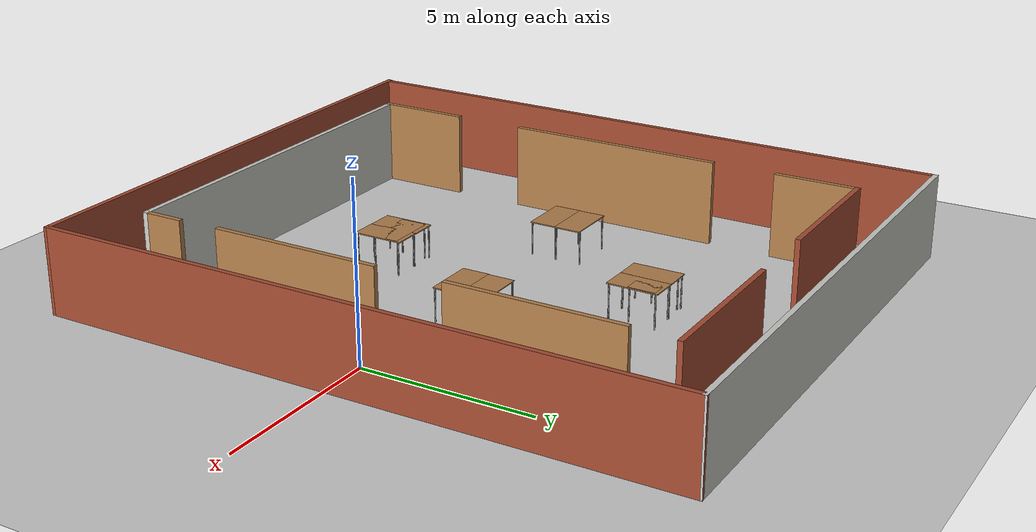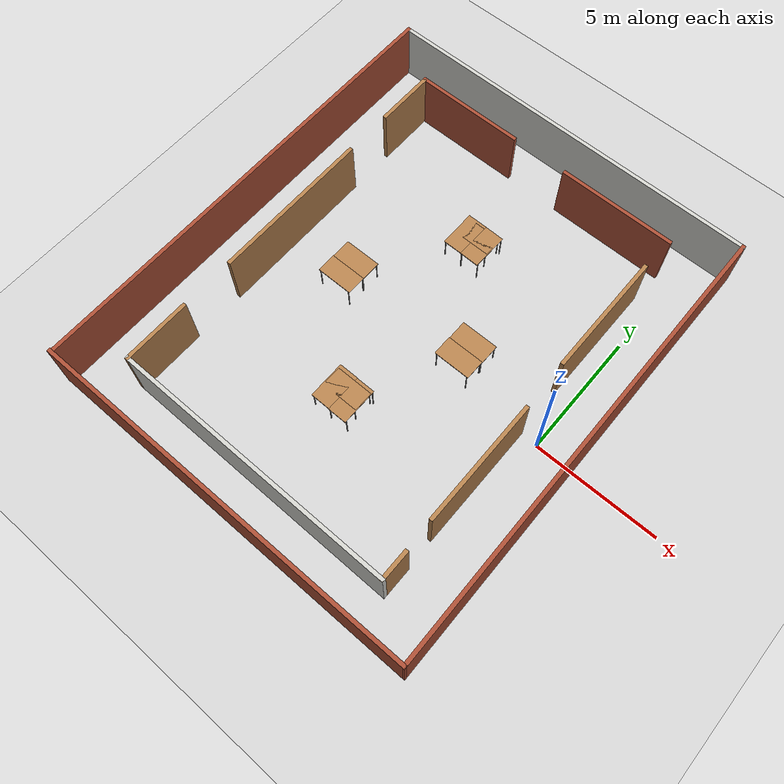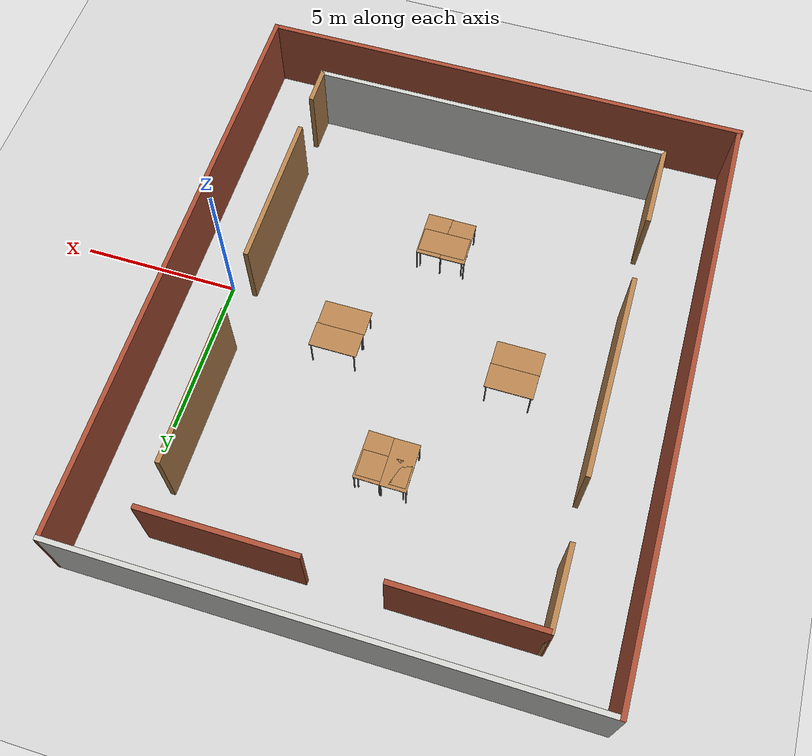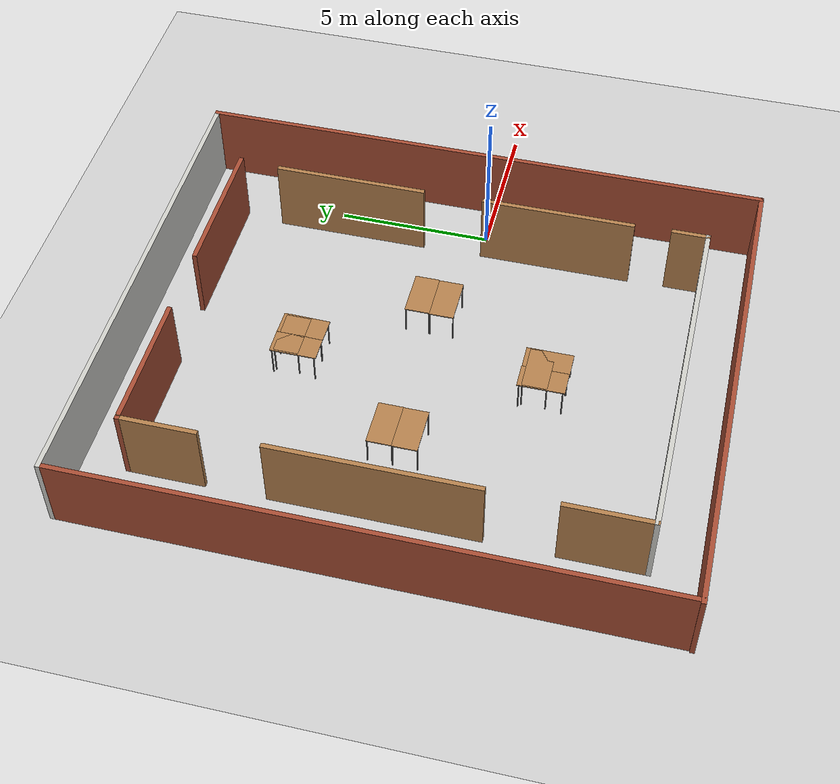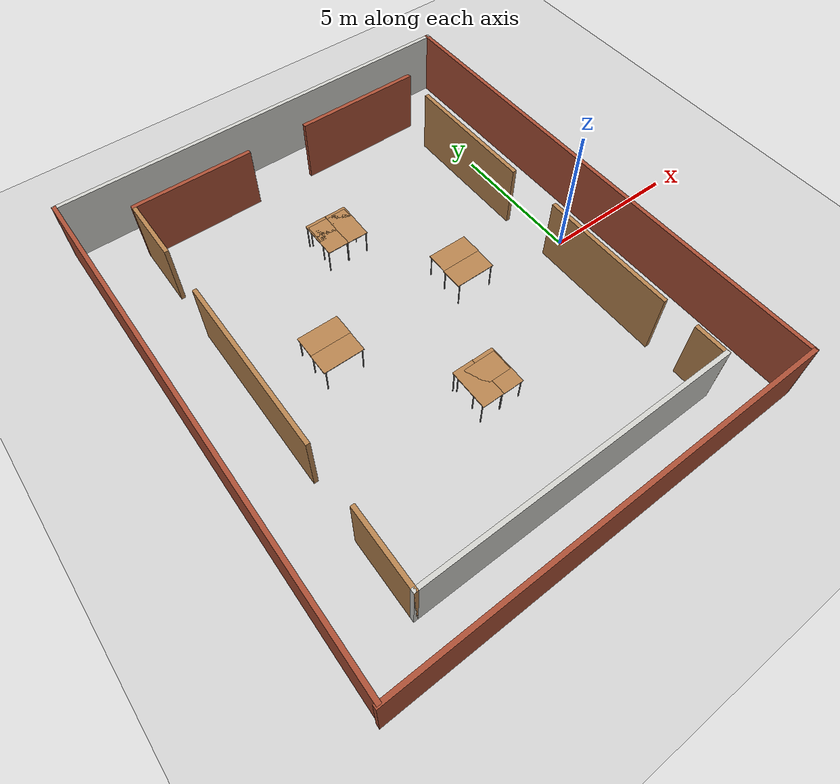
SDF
<sdf version="1.4">
 <world name="default">
  <model name="ground_plane">
   <static>1</static>
   <link name="link">
    <collision name="collision">
     <geometry><plane><normal>0 0 1</normal><size>100 100</size></plane></geometry>
     <surface><friction><ode><mu>100</mu><mu2>50</mu2></ode></friction></surface>
    </collision>
    <visual name="visual">
     <cast_shadows>0</cast_shadows>
     <geometry><plane><normal>0 0 1</normal><size>100 100</size></plane></geometry>
     <material>
      <script><uri>file://media/materials/scripts/gazebo.material</uri><name>Gazebo/Tertiary</name></script>
     </material>
    </visual>
   </link>
  </model>
  <light name="sun" type="directional">
   <pose>0 0 10 0 -0 0</pose>
   <diffuse>0.8 0.8 0.8 1</diffuse>
   <specular>0.2 0.2 0.2 1</specular>
   <attenuation>
    <range>1000</range>
    <constant>0.9</constant>
    <linear>0.01</linear>
    <quadratic>0.001</quadratic>
   </attenuation>
   <direction>-0.5 0.1 -0.9</direction>
  </light>
  <include><uri>model://open_hall3</uri><pose>-6.39 0.5 0.0 0 0 0</pose></include>
  <model name="table-01">
   <static>1</static>
   <link name="link">
    <collision name="surface">
     <pose>0 0 1 0 -0 0</pose>
     <geometry><box><size>1.5 0.8 0.03</size></box></geometry>
     <surface><friction><ode><mu>0.6</mu><mu2>0.6</mu2></ode></friction></surface>
    </collision>
    <visual name="visual1">
     <pose>0 0 1 0 -0 0</pose>
     <geometry><box><size>1.5 0.8 0.03</size></box></geometry>
     <material>
      <script><uri>file://media/materials/scripts/gazebo.material</uri><name>Gazebo/Wood</name></script>
     </material>
    </visual>
    <collision name="front_left_leg">
     <pose>0.68 0.38 0.5 0 -0 0</pose>
     <geometry><cylinder><radius>0.02</radius><length>1</length></cylinder></geometry>
    </collision>
    <visual name="front_left_leg">
     <pose>0.68 0.38 0.5 0 -0 0</pose>
     <geometry><cylinder><radius>0.02</radius><length>1</length></cylinder></geometry>
     <material>
      <script><uri>file://media/materials/scripts/gazebo.material</uri><name>Gazebo/Grey</name></script>
     </material>
    </visual>
    <collision name="front_right_leg">
     <pose>0.68 -0.38 0.5 0 -0 0</pose>
     <geometry><cylinder><radius>0.02</radius><length>1</length></cylinder></geometry>
    </collision>
    <visual name="front_right_leg">
     <pose>0.68 -0.38 0.5 0 -0 0</pose>
     <geometry><cylinder><radius>0.02</radius><length>1</length></cylinder></geometry>
     <material>
      <script><uri>file://media/materials/scripts/gazebo.material</uri><name>Gazebo/Grey</name></script>
     </material>
    </visual>
    <collision name="back_right_leg">
     <pose>-0.68 -0.38 0.5 0 -0 0</pose>
     <geometry><cylinder><radius>0.02</radius><length>1</length></cylinder></geometry>
    </collision>
    <visual name="back_right_leg">
     <pose>-0.68 -0.38 0.5 0 -0 0</pose>
     <geometry><cylinder><radius>0.02</radius><length>1</length></cylinder></geometry>
     <material>
      <script><uri>file://media/materials/scripts/gazebo.material</uri><name>Gazebo/Grey</name></script>
     </material>
    </visual>
    <collision name="back_left_leg">
     <pose>-0.68 0.38 0.5 0 -0 0</pose>
     <geometry><cylinder><radius>0.02</radius><length>1</length></cylinder></geometry>
    </collision>
    <visual name="back_left_leg">
     <pose>-0.68 0.38 0.5 0 -0 0</pose>
     <geometry><cylinder><radius>0.02</radius><length>1</length></cylinder></geometry>
     <material>
      <script><uri>file://media/materials/scripts/gazebo.material</uri><name>Gazebo/Grey</name></script>
     </material>
    </visual>
   </link>
   <pose>-5.75 -3.17 0 0 -0 -1.57</pose>
  </model>
  <model name="table-02">
   <static>1</static>
   <link name="link">
    <collision name="surface">
     <pose>0 0 1 0 -0 0</pose>
     <geometry><box><size>1.5 0.8 0.03</size></box></geometry>
     <surface><friction><ode><mu>0.6</mu><mu2>0.6</mu2></ode></friction></surface>
    </collision>
    <visual name="visual1">
     <pose>0 0 1 0 -0 0</pose>
     <geometry><box><size>1.5 0.8 0.03</size></box></geometry>
     <material>
      <script><uri>file://media/materials/scripts/gazebo.material</uri><name>Gazebo/Wood</name></script>
     </material>
    </visual>
    <collision name="front_left_leg">
     <pose>0.68 0.38 0.5 0 -0 0</pose>
     <geometry><cylinder><radius>0.02</radius><length>1</length></cylinder></geometry>
    </collision>
    <visual name="front_left_leg">
     <pose>0.68 0.38 0.5 0 -0 0</pose>
     <geometry><cylinder><radius>0.02</radius><length>1</length></cylinder></geometry>
     <material>
      <script><uri>file://media/materials/scripts/gazebo.material</uri><name>Gazebo/Grey</name></script>
     </material>
    </visual>
    <collision name="front_right_leg">
     <pose>0.68 -0.38 0.5 0 -0 0</pose>
     <geometry><cylinder><radius>0.02</radius><length>1</length></cylinder></geometry>
    </collision>
    <visual name="front_right_leg">
     <pose>0.68 -0.38 0.5 0 -0 0</pose>
     <geometry><cylinder><radius>0.02</radius><length>1</length></cylinder></geometry>
     <material>
      <script><uri>file://media/materials/scripts/gazebo.material</uri><name>Gazebo/Grey</name></script>
     </material>
    </visual>
    <collision name="back_right_leg">
     <pose>-0.68 -0.38 0.5 0 -0 0</pose>
     <geometry><cylinder><radius>0.02</radius><length>1</length></cylinder></geometry>
    </collision>
    <visual name="back_right_leg">
     <pose>-0.68 -0.38 0.5 0 -0 0</pose>
     <geometry><cylinder><radius>0.02</radius><length>1</length></cylinder></geometry>
     <material>
      <script><uri>file://media/materials/scripts/gazebo.material</uri><name>Gazebo/Grey</name></script>
     </material>
    </visual>
    <collision name="back_left_leg">
     <pose>-0.68 0.38 0.5 0 -0 0</pose>
     <geometry><cylinder><radius>0.02</radius><length>1</length></cylinder></geometry>
    </collision>
    <visual name="back_left_leg">
     <pose>-0.68 0.38 0.5 0 -0 0</pose>
     <geometry><cylinder><radius>0.02</radius><length>1</length></cylinder></geometry>
     <material>
      <script><uri>file://media/materials/scripts/gazebo.material</uri><name>Gazebo/Grey</name></script>
     </material>
    </visual>
   </link>
   <pose>-6.52 -3.16 0 0 -0 -1.57</pose>
  </model>
  <model name="table-03">
   <static>1</static>
   <link name="link">
    <collision name="surface">
     <pose>0 0 1 0 -0 0</pose>
     <geometry><box><size>1.5 0.8 0.03</size></box></geometry>
     <surface><friction><ode><mu>0.6</mu><mu2>0.6</mu2></ode></friction></surface>
    </collision>
    <visual name="visual1">
     <pose>0 0 1 0 -0 0</pose>
     <geometry><box><size>1.5 0.8 0.03</size></box></geometry>
     <material>
      <script><uri>file://media/materials/scripts/gazebo.material</uri><name>Gazebo/Wood</name></script>
     </material>
    </visual>
    <collision name="front_left_leg">
     <pose>0.68 0.38 0.5 0 -0 0</pose>
     <geometry><cylinder><radius>0.02</radius><length>1</length></cylinder></geometry>
    </collision>
    <visual name="front_left_leg">
     <pose>0.68 0.38 0.5 0 -0 0</pose>
     <geometry><cylinder><radius>0.02</radius><length>1</length></cylinder></geometry>
     <material>
      <script><uri>file://media/materials/scripts/gazebo.material</uri><name>Gazebo/Grey</name></script>
     </material>
    </visual>
    <collision name="front_right_leg">
     <pose>0.68 -0.38 0.5 0 -0 0</pose>
     <geometry><cylinder><radius>0.02</radius><length>1</length></cylinder></geometry>
    </collision>
    <visual name="front_right_leg">
     <pose>0.68 -0.38 0.5 0 -0 0</pose>
     <geometry><cylinder><radius>0.02</radius><length>1</length></cylinder></geometry>
     <material>
      <script><uri>file://media/materials/scripts/gazebo.material</uri><name>Gazebo/Grey</name></script>
     </material>
    </visual>
    <collision name="back_right_leg">
     <pose>-0.68 -0.38 0.5 0 -0 0</pose>
     <geometry><cylinder><radius>0.02</radius><length>1</length></cylinder></geometry>
    </collision>
    <visual name="back_right_leg">
     <pose>-0.68 -0.38 0.5 0 -0 0</pose>
     <geometry><cylinder><radius>0.02</radius><length>1</length></cylinder></geometry>
     <material>
      <script><uri>file://media/materials/scripts/gazebo.material</uri><name>Gazebo/Grey</name></script>
     </material>
    </visual>
    <collision name="back_left_leg">
     <pose>-0.68 0.38 0.5 0 -0 0</pose>
     <geometry><cylinder><radius>0.02</radius><length>1</length></cylinder></geometry>
    </collision>
    <visual name="back_left_leg">
     <pose>-0.68 0.38 0.5 0 -0 0</pose>
     <geometry><cylinder><radius>0.02</radius><length>1</length></cylinder></geometry>
     <material>
      <script><uri>file://media/materials/scripts/gazebo.material</uri><name>Gazebo/Grey</name></script>
     </material>
    </visual>
   </link>
   <pose>-9.34 0.31 0 0 -0 0</pose>
  </model>
  <model name="table-04">
   <static>1</static>
   <link name="link">
    <collision name="surface">
     <pose>0 0 1 0 -0 0</pose>
     <geometry><box><size>1.5 0.8 0.03</size></box></geometry>
     <surface><friction><ode><mu>0.6</mu><mu2>0.6</mu2></ode></friction></surface>
    </collision>
    <visual name="visual1">
     <pose>0 0 1 0 -0 0</pose>
     <geometry><box><size>1.5 0.8 0.03</size></box></geometry>
     <material>
      <script><uri>file://media/materials/scripts/gazebo.material</uri><name>Gazebo/Wood</name></script>
     </material>
    </visual>
    <collision name="front_left_leg">
     <pose>0.68 0.38 0.5 0 -0 0</pose>
     <geometry><cylinder><radius>0.02</radius><length>1</length></cylinder></geometry>
    </collision>
    <visual name="front_left_leg">
     <pose>0.68 0.38 0.5 0 -0 0</pose>
     <geometry><cylinder><radius>0.02</radius><length>1</length></cylinder></geometry>
     <material>
      <script><uri>file://media/materials/scripts/gazebo.material</uri><name>Gazebo/Grey</name></script>
     </material>
    </visual>
    <collision name="front_right_leg">
     <pose>0.68 -0.38 0.5 0 -0 0</pose>
     <geometry><cylinder><radius>0.02</radius><length>1</length></cylinder></geometry>
    </collision>
    <visual name="front_right_leg">
     <pose>0.68 -0.38 0.5 0 -0 0</pose>
     <geometry><cylinder><radius>0.02</radius><length>1</length></cylinder></geometry>
     <material>
      <script><uri>file://media/materials/scripts/gazebo.material</uri><name>Gazebo/Grey</name></script>
     </material>
    </visual>
    <collision name="back_right_leg">
     <pose>-0.68 -0.38 0.5 0 -0 0</pose>
     <geometry><cylinder><radius>0.02</radius><length>1</length></cylinder></geometry>
    </collision>
    <visual name="back_right_leg">
     <pose>-0.68 -0.38 0.5 0 -0 0</pose>
     <geometry><cylinder><radius>0.02</radius><length>1</length></cylinder></geometry>
     <material>
      <script><uri>file://media/materials/scripts/gazebo.material</uri><name>Gazebo/Grey</name></script>
     </material>
    </visual>
    <collision name="back_left_leg">
     <pose>-0.68 0.38 0.5 0 -0 0</pose>
     <geometry><cylinder><radius>0.02</radius><length>1</length></cylinder></geometry>
    </collision>
    <visual name="back_left_leg">
     <pose>-0.68 0.38 0.5 0 -0 0</pose>
     <geometry><cylinder><radius>0.02</radius><length>1</length></cylinder></geometry>
     <material>
      <script><uri>file://media/materials/scripts/gazebo.material</uri><name>Gazebo/Grey</name></script>
     </material>
    </visual>
   </link>
   <pose>-9.33 1.09 0 0 -0 0</pose>
  </model>
  <model name="table-05">
   <static>1</static>
   <link name="link">
    <collision name="surface">
     <pose>0 0 1 0 -0 0</pose>
     <geometry><box><size>1.5 0.8 0.03</size></box></geometry>
     <surface><friction><ode><mu>0.6</mu><mu2>0.6</mu2></ode></friction></surface>
    </collision>
    <visual name="visual1">
     <pose>0 0 1 0 -0 0</pose>
     <geometry><box><size>1.5 0.8 0.03</size></box></geometry>
     <material>
      <script><uri>file://media/materials/scripts/gazebo.material</uri><name>Gazebo/Wood</name></script>
     </material>
    </visual>
    <collision name="front_left_leg">
     <pose>0.68 0.38 0.5 0 -0 0</pose>
     <geometry><cylinder><radius>0.02</radius><length>1</length></cylinder></geometry>
    </collision>
    <visual name="front_left_leg">
     <pose>0.68 0.38 0.5 0 -0 0</pose>
     <geometry><cylinder><radius>0.02</radius><length>1</length></cylinder></geometry>
     <material>
      <script><uri>file://media/materials/scripts/gazebo.material</uri><name>Gazebo/Grey</name></script>
     </material>
    </visual>
    <collision name="front_right_leg">
     <pose>0.68 -0.38 0.5 0 -0 0</pose>
     <geometry><cylinder><radius>0.02</radius><length>1</length></cylinder></geometry>
    </collision>
    <visual name="front_right_leg">
     <pose>0.68 -0.38 0.5 0 -0 0</pose>
     <geometry><cylinder><radius>0.02</radius><length>1</length></cylinder></geometry>
     <material>
      <script><uri>file://media/materials/scripts/gazebo.material</uri><name>Gazebo/Grey</name></script>
     </material>
    </visual>
    <collision name="back_right_leg">
     <pose>-0.68 -0.38 0.5 0 -0 0</pose>
     <geometry><cylinder><radius>0.02</radius><length>1</length></cylinder></geometry>
    </collision>
    <visual name="back_right_leg">
     <pose>-0.68 -0.38 0.5 0 -0 0</pose>
     <geometry><cylinder><radius>0.02</radius><length>1</length></cylinder></geometry>
     <material>
      <script><uri>file://media/materials/scripts/gazebo.material</uri><name>Gazebo/Grey</name></script>
     </material>
    </visual>
    <collision name="back_left_leg">
     <pose>-0.68 0.38 0.5 0 -0 0</pose>
     <geometry><cylinder><radius>0.02</radius><length>1</length></cylinder></geometry>
    </collision>
    <visual name="back_left_leg">
     <pose>-0.68 0.38 0.5 0 -0 0</pose>
     <geometry><cylinder><radius>0.02</radius><length>1</length></cylinder></geometry>
     <material>
      <script><uri>file://media/materials/scripts/gazebo.material</uri><name>Gazebo/Grey</name></script>
     </material>
    </visual>
   </link>
   <pose>-3.92 1.27 0 0 -0 0</pose>
  </model>
  <model name="table-06">
   <static>1</static>
   <link name="link">
    <collision name="surface">
     <pose>0 0 1 0 -0 0</pose>
     <geometry><box><size>1.5 0.8 0.03</size></box></geometry>
     <surface><friction><ode><mu>0.6</mu><mu2>0.6</mu2></ode></friction></surface>
    </collision>
    <visual name="visual1">
     <pose>0 0 1 0 -0 0</pose>
     <geometry><box><size>1.5 0.8 0.03</size></box></geometry>
     <material>
      <script><uri>file://media/materials/scripts/gazebo.material</uri><name>Gazebo/Wood</name></script>
     </material>
    </visual>
    <collision name="front_left_leg">
     <pose>0.68 0.38 0.5 0 -0 0</pose>
     <geometry><cylinder><radius>0.02</radius><length>1</length></cylinder></geometry>
    </collision>
    <visual name="front_left_leg">
     <pose>0.68 0.38 0.5 0 -0 0</pose>
     <geometry><cylinder><radius>0.02</radius><length>1</length></cylinder></geometry>
     <material>
      <script><uri>file://media/materials/scripts/gazebo.material</uri><name>Gazebo/Grey</name></script>
     </material>
    </visual>
    <collision name="front_right_leg">
     <pose>0.68 -0.38 0.5 0 -0 0</pose>
     <geometry><cylinder><radius>0.02</radius><length>1</length></cylinder></geometry>
    </collision>
    <visual name="front_right_leg">
     <pose>0.68 -0.38 0.5 0 -0 0</pose>
     <geometry><cylinder><radius>0.02</radius><length>1</length></cylinder></geometry>
     <material>
      <script><uri>file://media/materials/scripts/gazebo.material</uri><name>Gazebo/Grey</name></script>
     </material>
    </visual>
    <collision name="back_right_leg">
     <pose>-0.68 -0.38 0.5 0 -0 0</pose>
     <geometry><cylinder><radius>0.02</radius><length>1</length></cylinder></geometry>
    </collision>
    <visual name="back_right_leg">
     <pose>-0.68 -0.38 0.5 0 -0 0</pose>
     <geometry><cylinder><radius>0.02</radius><length>1</length></cylinder></geometry>
     <material>
      <script><uri>file://media/materials/scripts/gazebo.material</uri><name>Gazebo/Grey</name></script>
     </material>
    </visual>
    <collision name="back_left_leg">
     <pose>-0.68 0.38 0.5 0 -0 0</pose>
     <geometry><cylinder><radius>0.02</radius><length>1</length></cylinder></geometry>
    </collision>
    <visual name="back_left_leg">
     <pose>-0.68 0.38 0.5 0 -0 0</pose>
     <geometry><cylinder><radius>0.02</radius><length>1</length></cylinder></geometry>
     <material>
      <script><uri>file://media/materials/scripts/gazebo.material</uri><name>Gazebo/Grey</name></script>
     </material>
    </visual>
   </link>
   <pose>-3.94 0.48 0 0 -0 0</pose>
  </model>
  <model name="table-07">
   <static>1</static>
   <link name="link">
    <collision name="surface">
     <pose>0 0 1 0 -0 0</pose>
     <geometry><box><size>1.5 0.8 0.03</size></box></geometry>
     <surface><friction><ode><mu>0.6</mu><mu2>0.6</mu2></ode></friction></surface>
    </collision>
    <visual name="visual1">
     <pose>0 0 1 0 -0 0</pose>
     <geometry><box><size>1.5 0.8 0.03</size></box></geometry>
     <material>
      <script><uri>file://media/materials/scripts/gazebo.material</uri><name>Gazebo/Wood</name></script>
     </material>
    </visual>
    <collision name="front_left_leg">
     <pose>0.68 0.38 0.5 0 -0 0</pose>
     <geometry><cylinder><radius>0.02</radius><length>1</length></cylinder></geometry>
    </collision>
    <visual name="front_left_leg">
     <pose>0.68 0.38 0.5 0 -0 0</pose>
     <geometry><cylinder><radius>0.02</radius><length>1</length></cylinder></geometry>
     <material>
      <script><uri>file://media/materials/scripts/gazebo.material</uri><name>Gazebo/Grey</name></script>
     </material>
    </visual>
    <collision name="front_right_leg">
     <pose>0.68 -0.38 0.5 0 -0 0</pose>
     <geometry><cylinder><radius>0.02</radius><length>1</length></cylinder></geometry>
    </collision>
    <visual name="front_right_leg">
     <pose>0.68 -0.38 0.5 0 -0 0</pose>
     <geometry><cylinder><radius>0.02</radius><length>1</length></cylinder></geometry>
     <material>
      <script><uri>file://media/materials/scripts/gazebo.material</uri><name>Gazebo/Grey</name></script>
     </material>
    </visual>
    <collision name="back_right_leg">
     <pose>-0.68 -0.38 0.5 0 -0 0</pose>
     <geometry><cylinder><radius>0.02</radius><length>1</length></cylinder></geometry>
    </collision>
    <visual name="back_right_leg">
     <pose>-0.68 -0.38 0.5 0 -0 0</pose>
     <geometry><cylinder><radius>0.02</radius><length>1</length></cylinder></geometry>
     <material>
      <script><uri>file://media/materials/scripts/gazebo.material</uri><name>Gazebo/Grey</name></script>
     </material>
    </visual>
    <collision name="back_left_leg">
     <pose>-0.68 0.38 0.5 0 -0 0</pose>
     <geometry><cylinder><radius>0.02</radius><length>1</length></cylinder></geometry>
    </collision>
    <visual name="back_left_leg">
     <pose>-0.68 0.38 0.5 0 -0 0</pose>
     <geometry><cylinder><radius>0.02</radius><length>1</length></cylinder></geometry>
     <material>
      <script><uri>file://media/materials/scripts/gazebo.material</uri><name>Gazebo/Grey</name></script>
     </material>
    </visual>
   </link>
   <pose>-6.94 4.58 0 0 -0 -1.57</pose>
  </model>
  <model name="table-08">
   <static>1</static>
   <link name="link">
    <collision name="surface">
     <pose>0 0 1 0 -0 0</pose>
     <geometry><box><size>1.5 0.8 0.03</size></box></geometry>
     <surface><friction><ode><mu>0.6</mu><mu2>0.6</mu2></ode></friction></surface>
    </collision>
    <visual name="visual1">
     <pose>0 0 1 0 -0 0</pose>
     <geometry><box><size>1.5 0.8 0.03</size></box></geometry>
     <material>
      <script><uri>file://media/materials/scripts/gazebo.material</uri><name>Gazebo/Wood</name></script>
     </material>
    </visual>
    <collision name="front_left_leg">
     <pose>0.68 0.38 0.5 0 -0 0</pose>
     <geometry><cylinder><radius>0.02</radius><length>1</length></cylinder></geometry>
    </collision>
    <visual name="front_left_leg">
     <pose>0.68 0.38 0.5 0 -0 0</pose>
     <geometry><cylinder><radius>0.02</radius><length>1</length></cylinder></geometry>
     <material>
      <script><uri>file://media/materials/scripts/gazebo.material</uri><name>Gazebo/Grey</name></script>
     </material>
    </visual>
    <collision name="front_right_leg">
     <pose>0.68 -0.38 0.5 0 -0 0</pose>
     <geometry><cylinder><radius>0.02</radius><length>1</length></cylinder></geometry>
    </collision>
    <visual name="front_right_leg">
     <pose>0.68 -0.38 0.5 0 -0 0</pose>
     <geometry><cylinder><radius>0.02</radius><length>1</length></cylinder></geometry>
     <material>
      <script><uri>file://media/materials/scripts/gazebo.material</uri><name>Gazebo/Grey</name></script>
     </material>
    </visual>
    <collision name="back_right_leg">
     <pose>-0.68 -0.38 0.5 0 -0 0</pose>
     <geometry><cylinder><radius>0.02</radius><length>1</length></cylinder></geometry>
    </collision>
    <visual name="back_right_leg">
     <pose>-0.68 -0.38 0.5 0 -0 0</pose>
     <geometry><cylinder><radius>0.02</radius><length>1</length></cylinder></geometry>
     <material>
      <script><uri>file://media/materials/scripts/gazebo.material</uri><name>Gazebo/Grey</name></script>
     </material>
    </visual>
    <collision name="back_left_leg">
     <pose>-0.68 0.38 0.5 0 -0 0</pose>
     <geometry><cylinder><radius>0.02</radius><length>1</length></cylinder></geometry>
    </collision>
    <visual name="back_left_leg">
     <pose>-0.68 0.38 0.5 0 -0 0</pose>
     <geometry><cylinder><radius>0.02</radius><length>1</length></cylinder></geometry>
     <material>
      <script><uri>file://media/materials/scripts/gazebo.material</uri><name>Gazebo/Grey</name></script>
     </material>
    </visual>
   </link>
   <pose>-6.15 4.57 0 0 -0 -1.59</pose>
  </model>
  <model name="table-09">
   <static>1</static>
   <link name="link">
    <collision name="surface">
     <pose>0 0 1 0 -0 0</pose>
     <geometry><box><size>1.5 0.8 0.03</size></box></geometry>
     <surface><friction><ode><mu>0.6</mu><mu2>0.6</mu2></ode></friction></surface>
    </collision>
    <visual name="visual1">
     <pose>0 0 1 0 -0 0</pose>
     <geometry><box><size>1.5 0.8 0.03</size></box></geometry>
     <material>
      <script><uri>file://media/materials/scripts/gazebo.material</uri><name>Gazebo/Wood</name></script>
     </material>
    </visual>
    <collision name="front_left_leg">
     <pose>0.68 0.38 0.5 0 -0 0</pose>
     <geometry><cylinder><radius>0.02</radius><length>1</length></cylinder></geometry>
    </collision>
    <visual name="front_left_leg">
     <pose>0.68 0.38 0.5 0 -0 0</pose>
     <geometry><cylinder><radius>0.02</radius><length>1</length></cylinder></geometry>
     <material>
      <script><uri>file://media/materials/scripts/gazebo.material</uri><name>Gazebo/Grey</name></script>
     </material>
    </visual>
    <collision name="front_right_leg">
     <pose>0.68 -0.38 0.5 0 -0 0</pose>
     <geometry><cylinder><radius>0.02</radius><length>1</length></cylinder></geometry>
    </collision>
    <visual name="front_right_leg">
     <pose>0.68 -0.38 0.5 0 -0 0</pose>
     <geometry><cylinder><radius>0.02</radius><length>1</length></cylinder></geometry>
     <material>
      <script><uri>file://media/materials/scripts/gazebo.material</uri><name>Gazebo/Grey</name></script>
     </material>
    </visual>
    <collision name="back_right_leg">
     <pose>-0.68 -0.38 0.5 0 -0 0</pose>
     <geometry><cylinder><radius>0.02</radius><length>1</length></cylinder></geometry>
    </collision>
    <visual name="back_right_leg">
     <pose>-0.68 -0.38 0.5 0 -0 0</pose>
     <geometry><cylinder><radius>0.02</radius><length>1</length></cylinder></geometry>
     <material>
      <script><uri>file://media/materials/scripts/gazebo.material</uri><name>Gazebo/Grey</name></script>
     </material>
    </visual>
    <collision name="back_left_leg">
     <pose>-0.68 0.38 0.5 0 -0 0</pose>
     <geometry><cylinder><radius>0.02</radius><length>1</length></cylinder></geometry>
    </collision>
    <visual name="back_left_leg">
     <pose>-0.68 0.38 0.5 0 -0 0</pose>
     <geometry><cylinder><radius>0.02</radius><length>1</length></cylinder></geometry>
     <material>
      <script><uri>file://media/materials/scripts/gazebo.material</uri><name>Gazebo/Grey</name></script>
     </material>
    </visual>
   </link>
   <pose>-6.54 4.82 0 0 -0 -0</pose>
  </model>
  <model name="table-10">
   <static>1</static>
   <link name="link">
    <collision name="surface">
     <pose>0 0 1 0 -0 0</pose>
     <geometry><box><size>1.5 0.8 0.03</size></box></geometry>
     <surface><friction><ode><mu>0.6</mu><mu2>0.6</mu2></ode></friction></surface>
    </collision>
    <visual name="visual1">
     <pose>0 0 1 0 -0 0</pose>
     <geometry><box><size>1.5 0.8 0.03</size></box></geometry>
     <material>
      <script><uri>file://media/materials/scripts/gazebo.material</uri><name>Gazebo/Wood</name></script>
     </material>
    </visual>
    <collision name="front_left_leg">
     <pose>0.68 0.38 0.5 0 -0 0</pose>
     <geometry><cylinder><radius>0.02</radius><length>1</length></cylinder></geometry>
    </collision>
    <visual name="front_left_leg">
     <pose>0.68 0.38 0.5 0 -0 0</pose>
     <geometry><cylinder><radius>0.02</radius><length>1</length></cylinder></geometry>
     <material>
      <script><uri>file://media/materials/scripts/gazebo.material</uri><name>Gazebo/Grey</name></script>
     </material>
    </visual>
    <collision name="front_right_leg">
     <pose>0.68 -0.38 0.5 0 -0 0</pose>
     <geometry><cylinder><radius>0.02</radius><length>1</length></cylinder></geometry>
    </collision>
    <visual name="front_right_leg">
     <pose>0.68 -0.38 0.5 0 -0 0</pose>
     <geometry><cylinder><radius>0.02</radius><length>1</length></cylinder></geometry>
     <material>
      <script><uri>file://media/materials/scripts/gazebo.material</uri><name>Gazebo/Grey</name></script>
     </material>
    </visual>
    <collision name="back_right_leg">
     <pose>-0.68 -0.38 0.5 0 -0 0</pose>
     <geometry><cylinder><radius>0.02</radius><length>1</length></cylinder></geometry>
    </collision>
    <visual name="back_right_leg">
     <pose>-0.68 -0.38 0.5 0 -0 0</pose>
     <geometry><cylinder><radius>0.02</radius><length>1</length></cylinder></geometry>
     <material>
      <script><uri>file://media/materials/scripts/gazebo.material</uri><name>Gazebo/Grey</name></script>
     </material>
    </visual>
    <collision name="back_left_leg">
     <pose>-0.68 0.38 0.5 0 -0 0</pose>
     <geometry><cylinder><radius>0.02</radius><length>1</length></cylinder></geometry>
    </collision>
    <visual name="back_left_leg">
     <pose>-0.68 0.38 0.5 0 -0 0</pose>
     <geometry><cylinder><radius>0.02</radius><length>1</length></cylinder></geometry>
     <material>
      <script><uri>file://media/materials/scripts/gazebo.material</uri><name>Gazebo/Grey</name></script>
     </material>
    </visual>
   </link>
   <pose>-6.13 -2.95 0 0 -0 -0</pose>
  </model>
 </world>
</sdf>

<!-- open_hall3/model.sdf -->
<sdf version='1.6'>
  <model name='open_hall3'>
    <pose frame=''>-6.57156 -0.923455 0 0 -0 0</pose>
    <link name='Wall_11'>
      <collision name='Wall_11_Collision'>
        <geometry>
          <box>
            <size>4.75 0.15 2.5</size>
          </box>
        </geometry>
        <pose frame=''>0 0 1.25 0 -0 0</pose>
      </collision>
      <visual name='Wall_11_Visual'>
        <pose frame=''>0 0 1.25 0 -0 0</pose>
        <geometry>
          <box>
            <size>4.75 0.15 2.5</size>
          </box>
        </geometry>
        <material>
          <script>
            <uri>file://media/materials/scripts/gazebo.material</uri>
            <name>Gazebo/Bricks</name>
          </script>
          <ambient>1 1 1 1</ambient>
        </material>
        <meta>
          <layer>0</layer>
        </meta>
      </visual>
      <pose frame=''>3.40186 7.79691 0 0 -0 3.14159</pose>
    </link>
    <link name='Wall_13'>
      <collision name='Wall_13_Collision'>
        <geometry>
          <box>
            <size>2.75 0.15 2.5</size>
          </box>
        </geometry>
        <pose frame=''>0 0 1.25 0 -0 0</pose>
      </collision>
      <visual name='Wall_13_Visual'>
        <pose frame=''>0 0 1.25 0 -0 0</pose>
        <geometry>
          <box>
            <size>2.75 0.15 2.5</size>
          </box>
        </geometry>
        <material>
          <script>
            <uri>file://media/materials/scripts/gazebo.material</uri>
            <name>Gazebo/Wood</name>
          </script>
          <ambient>1 1 1 1</ambient>
        </material>
        <meta>
          <layer>0</layer>
        </meta>
      </visual>
      <pose frame=''>-5.64814 -6.50309 0 0 -0 1.5708</pose>
    </link>
    <link name='Wall_15'>
      <collision name='Wall_15_Collision'>
        <geometry>
          <box>
            <size>6.5 0.15 2.5</size>
          </box>
        </geometry>
        <pose frame=''>0 0 1.25 0 -0 0</pose>
      </collision>
      <visual name='Wall_15_Visual'>
        <pose frame=''>0 0 1.25 0 -0 0</pose>
        <geometry>
          <box>
            <size>6.5 0.15 2.5</size>
          </box>
        </geometry>
        <material>
          <script>
            <uri>file://media/materials/scripts/gazebo.material</uri>
            <name>Gazebo/Wood</name>
          </script>
          <ambient>1 1 1 1</ambient>
        </material>
        <meta>
          <layer>0</layer>
        </meta>
      </visual>
      <pose frame=''>-5.64814 0.23954 0 0 -0 1.5708</pose>
    </link>
    <link name='Wall_17'>
      <collision name='Wall_17_Collision'>
        <geometry>
          <box>
            <size>2.5 0.15 2.5</size>
          </box>
        </geometry>
        <pose frame=''>0 0 1.25 0 -0 0</pose>
      </collision>
      <visual name='Wall_17_Visual'>
        <pose frame=''>0 0 1.25 0 -0 0</pose>
        <geometry>
          <box>
            <size>2.5 0.15 2.5</size>
          </box>
        </geometry>
        <material>
          <script>
            <uri>file://media/materials/scripts/gazebo.material</uri>
            <name>Gazebo/Wood</name>
          </script>
          <ambient>1 1 1 1</ambient>
        </material>
        <meta>
          <layer>0</layer>
        </meta>
      </visual>
      <pose frame=''>-5.64814 6.62191 0 0 -0 -1.5708</pose>
    </link>
    <link name='Wall_19'>
      <collision name='Wall_19_Collision'>
        <geometry>
          <box>
            <size>1.25 0.15 2.5</size>
          </box>
        </geometry>
        <pose frame=''>0 0 1.25 0 -0 0</pose>
      </collision>
      <visual name='Wall_19_Visual'>
        <pose frame=''>0 0 1.25 0 -0 0</pose>
        <geometry>
          <box>
            <size>1.25 0.15 2.5</size>
          </box>
        </geometry>
        <material>
          <script>
            <uri>file://media/materials/scripts/gazebo.material</uri>
            <name>Gazebo/Wood</name>
          </script>
          <ambient>1 1 1 1</ambient>
        </material>
        <meta>
          <layer>0</layer>
        </meta>
      </visual>
      <pose frame=''>5.70186 -7.25309 0 0 -0 1.5708</pose>
    </link>
    <link name='Wall_22'>
      <collision name='Wall_22_Collision'>
        <geometry>
          <box>
            <size>5 0.15 2.5</size>
          </box>
        </geometry>
        <pose frame=''>0 0 1.25 0 -0 0</pose>
      </collision>
      <visual name='Wall_22_Visual'>
        <pose frame=''>0 0 1.25 0 -0 0</pose>
        <geometry>
          <box>
            <size>5 0.15 2.5</size>
          </box>
        </geometry>
        <material>
          <script>
            <uri>file://media/materials/scripts/gazebo.material</uri>
            <name>Gazebo/Wood</name>
          </script>
          <ambient>1 1 1 1</ambient>
        </material>
        <meta>
          <layer>0</layer>
        </meta>
      </visual>
      <pose frame=''>5.65717 -2.95885 0 0 -0 1.5708</pose>
    </link>
    <link name='Wall_24'>
      <collision name='Wall_24_Collision'>
        <geometry>
          <box>
            <size>5 0.15 2.5</size>
          </box>
        </geometry>
        <pose frame=''>0 0 1.25 0 -0 0</pose>
      </collision>
      <visual name='Wall_24_Visual'>
        <pose frame=''>0 0 1.25 0 -0 0</pose>
        <geometry>
          <box>
            <size>5 0.15 2.5</size>
          </box>
        </geometry>
        <material>
          <script>
            <uri>file://media/materials/scripts/gazebo.material</uri>
            <name>Gazebo/Wood</name>
          </script>
          <ambient>1 1 1 1</ambient>
        </material>
        <meta>
          <layer>0</layer>
        </meta>
      </visual>
      <pose frame=''>5.61065 3.97322 0 0 -0 1.5708</pose>
    </link>
    <link name='Wall_26'>
      <collision name='Wall_26_Collision'>
        <geometry>
          <box>
            <size>18.75 0.15 2.5</size>
          </box>
        </geometry>
        <pose frame=''>0 0 1.25 0 -0 0</pose>
      </collision>
      <visual name='Wall_26_Visual'>
        <pose frame=''>0 0 1.25 0 -0 0</pose>
        <geometry>
          <box>
            <size>18.75 0.15 2.5</size>
          </box>
        </geometry>
        <material>
          <script>
            <uri>file://media/materials/scripts/gazebo.material</uri>
            <name>Gazebo/Bricks</name>
          </script>
          <ambient>1 1 1 1</ambient>
        </material>
        <meta>
          <layer>0</layer>
        </meta>
      </visual>
      <pose frame=''>-7.78824 0.023327 0 0 -0 -1.5708</pose>
    </link>
    <link name='Wall_28'>
      <collision name='Wall_28_Collision'>
        <geometry>
          <box>
            <size>15.8196 0.15 2.5</size>
          </box>
        </geometry>
        <pose frame=''>0 0 1.25 0 -0 0</pose>
      </collision>
      <visual name='Wall_28_Visual'>
        <pose frame=''>0 0 1.25 0 -0 0</pose>
        <geometry>
          <box>
            <size>15.8196 0.15 2.5</size>
          </box>
        </geometry>
        <material>
          <script>
            <uri>file://media/materials/scripts/gazebo.material</uri>
            <name>Gazebo/Bricks</name>
          </script>
          <ambient>1 1 1 1</ambient>
        </material>
        <meta>
          <layer>0</layer>
        </meta>
      </visual>
      <pose frame=''>0 -9.29993 0 0 -0 0.002969</pose>
    </link>
    <link name='Wall_29'>
      <collision name='Wall_29_Collision'>
        <geometry>
          <box>
            <size>18.75 0.15 2.5</size>
          </box>
        </geometry>
        <pose frame=''>0 0 1.25 0 -0 0</pose>
      </collision>
      <visual name='Wall_29_Visual'>
        <pose frame=''>0 0 1.25 0 -0 0</pose>
        <geometry>
          <box>
            <size>18.75 0.15 2.5</size>
          </box>
        </geometry>
        <material>
          <script>
            <uri>file://media/materials/scripts/gazebo.material</uri>
            <name>Gazebo/Bricks</name>
          </script>
          <ambient>1 1 1 1</ambient>
        </material>
        <meta>
          <layer>0</layer>
        </meta>
      </visual>
      <pose frame=''>7.82326 0.023327 0 0 -0 1.57203</pose>
    </link>
    <link name='Wall_3'>
      <collision name='Wall_3_Collision'>
        <geometry>
          <box>
            <size>11.5 0.15 2.5</size>
          </box>
        </geometry>
        <pose frame=''>0 0 1.25 0 -0 0</pose>
      </collision>
      <visual name='Wall_3_Visual'>
        <pose frame=''>0 0 1.25 0 -0 0</pose>
        <geometry>
          <box>
            <size>11.5 0.15 2.5</size>
          </box>
        </geometry>
        <material>
          <script>
            <uri>file://media/materials/scripts/gazebo.material</uri>
            <name>Gazebo/CeilingTiled</name>
          </script>
          <ambient>1 1 1 1</ambient>
        </material>
        <meta>
          <layer>0</layer>
        </meta>
      </visual>
      <pose frame=''>0.026863 -7.80309 0 0 -0 0</pose>
    </link>
    <link name='Wall_30'>
      <collision name='Wall_30_Collision'>
        <geometry>
          <box>
            <size>15.75 0.15 2.5</size>
          </box>
        </geometry>
        <pose frame=''>0 0 1.25 0 -0 0</pose>
      </collision>
      <visual name='Wall_30_Visual'>
        <pose frame=''>0 0 1.25 0 -0 0</pose>
        <geometry>
          <box>
            <size>15.75 0.15 2.5</size>
          </box>
        </geometry>
        <material>
          <script>
            <uri>file://media/materials/scripts/gazebo.material</uri>
            <name>Gazebo/CeilingTiled</name>
          </script>
          <ambient>1 1 1 1</ambient>
        </material>
        <meta>
          <layer>0</layer>
        </meta>
      </visual>
      <pose frame=''>0.011763 9.32333 0 0 -0 3.14159</pose>
    </link>
    <link name='Wall_9'>
      <collision name='Wall_9_Collision'>
        <geometry>
          <box>
            <size>4.5 0.15 2.5</size>
          </box>
        </geometry>
        <pose frame=''>0 0 1.25 0 -0 0</pose>
      </collision>
      <visual name='Wall_9_Visual'>
        <pose frame=''>0 0 1.25 0 -0 0</pose>
        <geometry>
          <box>
            <size>4.5 0.15 2.5</size>
          </box>
        </geometry>
        <material>
          <script>
            <uri>file://media/materials/scripts/gazebo.material</uri>
            <name>Gazebo/Bricks</name>
          </script>
          <ambient>1 1 1 1</ambient>
        </material>
        <meta>
          <layer>0</layer>
        </meta>
      </visual>
      <pose frame=''>-3.47314 7.79691 0 0 -0 0</pose>
    </link>
    <static>1</static>
  </model>
</sdf>
